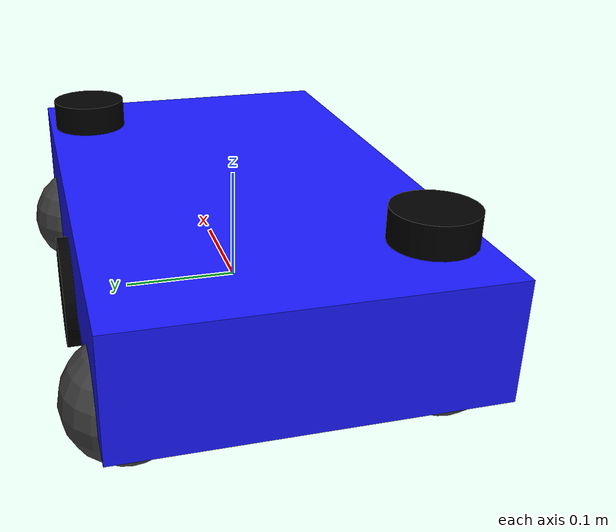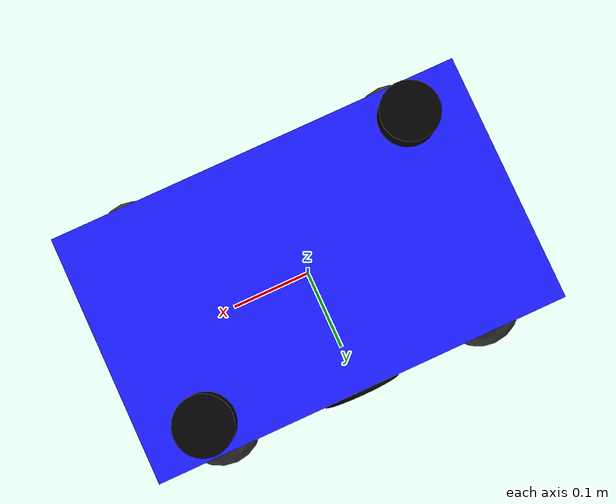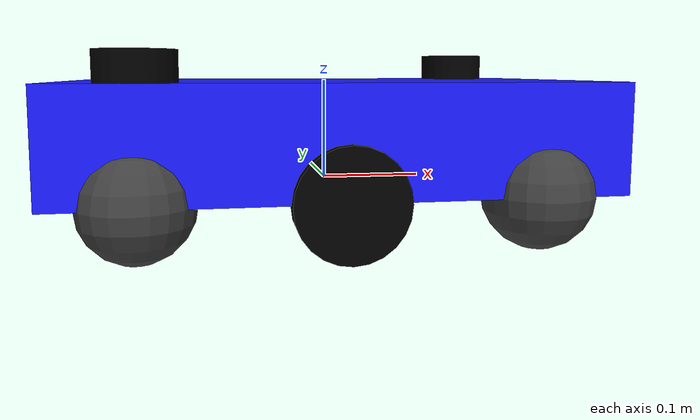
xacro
<?xml version="1.0"?>

<robot name="autobot" xmlns:xacro="http://www.ros.org/wiki/xacro">

    <xacro:include filename="gazebo_references.xacro" />
    <xacro:include filename="gazebo_diff_drive.xacro" />
    <xacro:include filename="sensors.xacro" />

    <!-- PROPERTY DEFINITIONS -->
    <xacro:property name="chassis_length"   value="0.500" />
    <xacro:property name="chassis_width"    value="0.300" />
    <xacro:property name="chassis_height"   value="0.150" />
    <xacro:property name="wheel_radius"     value="0.050" />
    <xacro:property name="wheel_thickness"  value="0.020" />
    <xacro:property name="caster_radius"    value="0.050" />
    <xacro:property name="ground_clearance" value="0.050" />

    <!-- * * * Link Definitions * * * -->
    <link name="base_link"/>
    <link name="laser_merged" />

    <link name="chassis_lower">
        <visual>
            <origin xyz="0.0 0.0 0.0" rpy="0.0 0.0 0.0" />
            <geometry>
                <box size="0.5 0.3 0.1" />
            </geometry>
            <material name="blue">
                <color rgba="0.1 0.1 1.0 1.0" />
            </material>
        </visual>
        <collision>
            <origin xyz="0.0 0.0 0.0" rpy="0.0 0.0 0.0" />
            <geometry>
                <box size="${chassis_length} ${chassis_width} 0.1" />
            </geometry>
            <material name="blue"/>
        </collision>
        <inertial>
            <origin xyz="0.0 0.0 0.0" rpy="0.0 0.0 0.0" />
            <mass value="20.0"/>
            <inertia ixx="0.167" ixy="0.0" ixz="0.0" iyy="0.433" iyz="0.0" izz="0.567" />
        </inertial>
    </link>

    <link name="left_drive_wheel">
        <visual>
          <origin xyz="0.0 0.0 0.0" rpy="0.0 0.0 0.0"/>
          <geometry>
            <cylinder radius="${wheel_radius}" length="${wheel_thickness}"/>
          </geometry>
          <material name="black">
            <color rgba="0.0 0.0 0.0 1.0"/>
          </material>
        </visual>
        <collision>
            <origin xyz="0.0 0.0 0.0" rpy="0.0 0.0 0.0"/>
            <geometry>
                <sphere radius="${wheel_radius}" />
            </geometry>
            <material name="black">
                <color rgba="0.0 0.0 0.0 1.0"/>
            </material>
        </collision>
        <inertial>
            <origin xyz="0.0 0.0 0.0" rpy="0.0 0.0 0.0" />
            <mass value="1.0" />
            <inertia ixx="3.416e-4" ixy="0.0" ixz="0.0" iyy="3.416e-4" iyz="0.0" izz="2.083e-4" />
        </inertial>
    </link>

    <link name="right_drive_wheel">
        <visual>
          <origin xyz="0.0 0.0 0.0" rpy="0.0 0.0 0.0"/>
          <geometry>
            <cylinder radius="${wheel_radius}" length="${wheel_thickness}"/>
          </geometry>
          <material name="black">
            <color rgba="0.0 0.0 0.0 1.0"/>
          </material>
        </visual>
        <collision>
            <origin xyz="0.0 0.0 0.0" rpy="0.0 0.0 0.0"/>
            <geometry>
                <sphere radius="${wheel_radius}" />
            </geometry>
            <material name="black">
                <color rgba="0.0 0.0 0.0 1.0"/>
            </material>
        </collision>
        <inertial>
            <origin xyz="0.0 0.0 0.0" rpy="0.0 0.0 0.0" />
            <mass value="1.0" />
            <inertia ixx="3.416e-4" ixy="0.0" ixz="0.0" iyy="3.416e-4" iyz="0.0" izz="2.083e-4" />
        </inertial>
    </link>

    <xacro:macro name="caster_wheel" params="name">
        <link name="${name}">
            <visual>
                <origin xyz="0.0 0.0 0.0" rpy="0.0 0.0 0.0" />
                <geometry>
                    <sphere radius="${caster_radius}" />
                </geometry>
                <material name="gray">
                    <color rgba="0.25 0.25 0.25 1.0" />
                </material>
            </visual>
            <collision>
                <origin xyz="0.0 0.0 0.0" rpy="0.0 0.0 0.0" />
                <geometry>
                    <sphere radius="${caster_radius}" />
                </geometry>
                <material name="gray">
                    <color rgba="0.25 0.25 0.25 1.0" />
                </material>
            </collision>
            <inertial>
                <origin xyz="0.0 0.0 0.0" rpy="0.0 0.0 0.0" />
                <mass value="1.0" />
                <inertia ixx="0.00025" ixy="0.0" ixz="0.0" iyy="0.00025" iyz="0.0" izz="0.00025" />
            </inertial>
        </link>
    </xacro:macro>

    <xacro:caster_wheel name="caster_front_left" />
    <xacro:caster_wheel name="caster_front_right" />
    <xacro:caster_wheel name="caster_rear_left" />
    <xacro:caster_wheel name="caster_rear_right" />

    <xacro:laser_scanner name="laser_front_left" topic="scan_front_left" />
    <xacro:laser_scanner name="laser_rear_right" topic="scan_rear_right" />

    <!-- * * * Joint Definitions * * * -->
    <joint name="base_footprint" type="fixed">
        <parent link="base_link" />
        <child	link="chassis_lower" />
        <origin xyz="0.0 0.0 ${ground_clearance}" rpy="0.0 0.0 0.0"/>
    </joint>

    <joint name="chassis_lower_to_laser_merged" type="fixed">
        <parent link="chassis_lower"/>
        <child link="laser_merged"/>
        <origin xyz="0.0 0.0 ${chassis_height/2 - 0.015}" rpy="0.0 0.0 0.0" />
    </joint>

    <joint name="chassis_lower_to_left_drive_wheel" type="continuous">
        <parent link="chassis_lower"/>
        <child link="left_drive_wheel"/>
        <origin xyz="0.0 0.15 ${-ground_clearance}" rpy="1.57 0.0 0.0" />
        <axis xyz="0.0 0.0 1.0" />
    </joint>

    <joint name="chassis_lower_to_right_drive_wheel" type="continuous">
        <parent link="chassis_lower"/>
        <child link="right_drive_wheel"/>
        <origin xyz="0.0 -0.15 ${-ground_clearance}" rpy="1.57 0.0 0.0" />
        <axis xyz="0.0 0.0 1.0" />
    </joint>

    <joint name="chassis_lower_to_caster_front_left" type="fixed">
        <parent link="chassis_lower"/>
        <child link="caster_front_left"/>
        <origin xyz="0.175 -0.125 ${-ground_clearance}" rpy="0.0 0.0 0.0" />
    </joint>

    <joint name="chassis_lower_to_caster_front_right" type="fixed">
        <parent link="chassis_lower"/>
        <child link="caster_front_right"/>
        <origin xyz="0.175 0.125 ${-ground_clearance}" rpy="0.0 0.0 0.0" />
    </joint>

    <joint name="chassis_lower_to_caster_rear_left" type="fixed">
        <parent link="chassis_lower"/>
        <child link="caster_rear_left"/>
        <origin xyz="-0.175 -0.125 ${-ground_clearance}" rpy="0.0 0.0 0.0" />
    </joint>

    <joint name="chassis_lower_to_caster_rear_right" type="fixed">
        <parent link="chassis_lower"/>
        <child link="caster_rear_right"/>
        <origin xyz="-0.175 0.125 ${-ground_clearance}" rpy="0.0 0.0 0.0" />
    </joint>

    <joint name="chassis_lower_to_laser_front_left" type="fixed">
        <parent link="chassis_lower"/>
        <child link="laser_front_left"/>
        <origin xyz="0.175 0.11 ${chassis_height/2 - 0.015}" rpy="0.0 0.0 0.7" />
    </joint>

    <joint name="chassis_lower_to_laser_rear_right" type="fixed">
        <parent link="chassis_lower"/>
        <child link="laser_rear_right"/>
        <origin xyz="-0.175 -0.11 ${chassis_height/2 - 0.015}" rpy="0.0 0.0 -2.525" />
    </joint>
</robot>

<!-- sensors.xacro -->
<robot xmlns:xacro="http://www.ros.org/wiki/xacro">

    <xacro:macro name="laser_scanner" params="name topic">
        <link name="${name}">
            <visual>
                <origin xyz="0.0 0.0 0.0" rpy="0.0 0.0 0.0" />
                <geometry>
                    <cylinder radius="0.035" length="0.035" />
                </geometry>
                <material name="black">
                    <color rgba="0.0 0.0 0.0 1.0" />
                </material>
            </visual>
            <collision>
                <origin xyz="0.0 0.0 0.0" rpy="0.0 0.0 0.0" />
                <geometry>
                    <cylinder radius="0.035" length="0.035" />
                </geometry>
            </collision>
            <inertial>
                <origin xyz="0.0 0.0 0.0" rpy="0.0 0.0 0.0" />
                <mass value="0.5" />
                <inertia ixx="1.0e-3" ixy="0.0" ixz="0.0" iyy="1.0e-3" iyz="0.0" izz="1.0e-3"/>
            </inertial>
        </link>

        <gazebo reference="${name}">
            <material>Gazebo/Black</material>
            <gravity>true</gravity>

            <sensor name="${name}" type="gpu_lidar">
                <always_on>true</always_on>
                <visualize>true</visualize>
                <origin xyz="0.0 0.0 0.0" rpy="0.0 0.0 0.0" />
                <update_rate>20</update_rate>
                <topic>${topic}</topic>
                <gz_frame_id>${name}</gz_frame_id>
                <lidar>
                    <scan>
                        <horizontal>
                            <samples>128</samples>
                            <min_angle>-2.35</min_angle>
                            <max_angle>2.35</max_angle>
                        </horizontal>
                    </scan>
                    <range>
                        <min>0.06</min>
                        <max>5.00</max>
                        <resolution>0.01</resolution>
                    </range>
                    <noise>
                        <type>gaussian</type>
                        <mean>0.0</mean>
                        <stddev>0.005</stddev>
                    </noise>
                </lidar>
            </sensor>
        </gazebo>
    </xacro:macro>
</robot>
